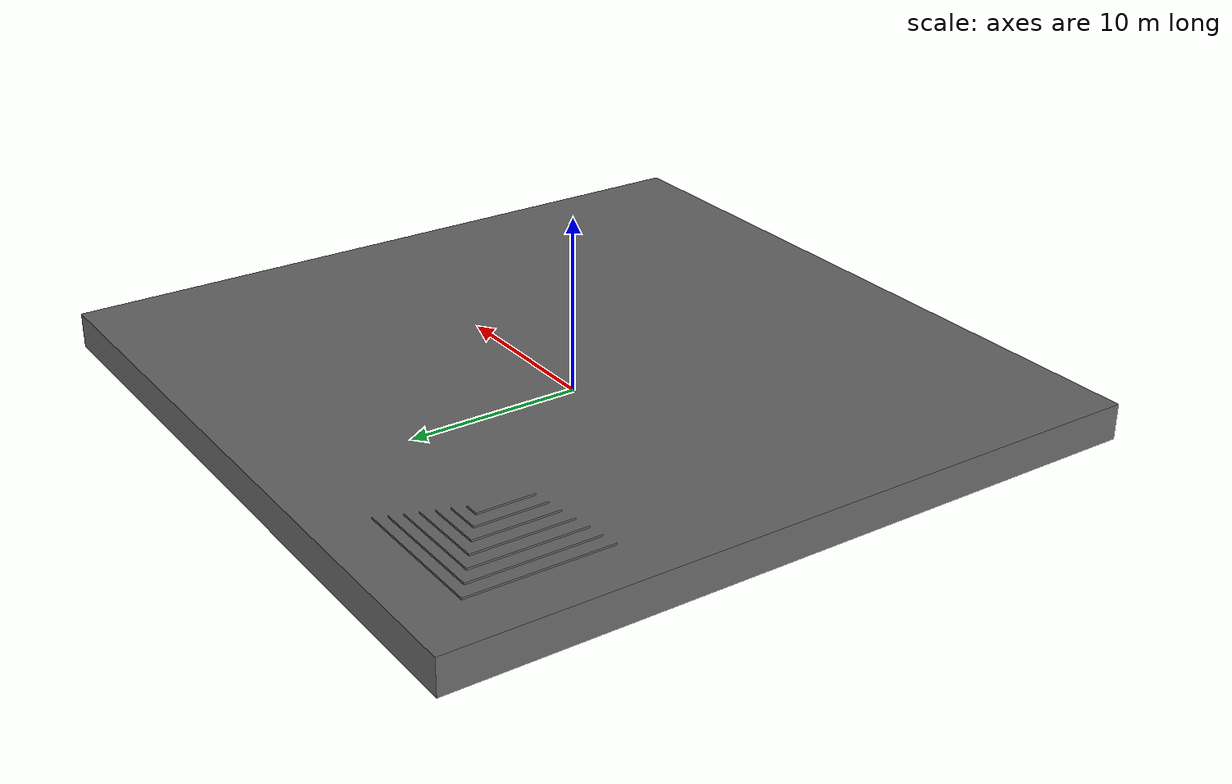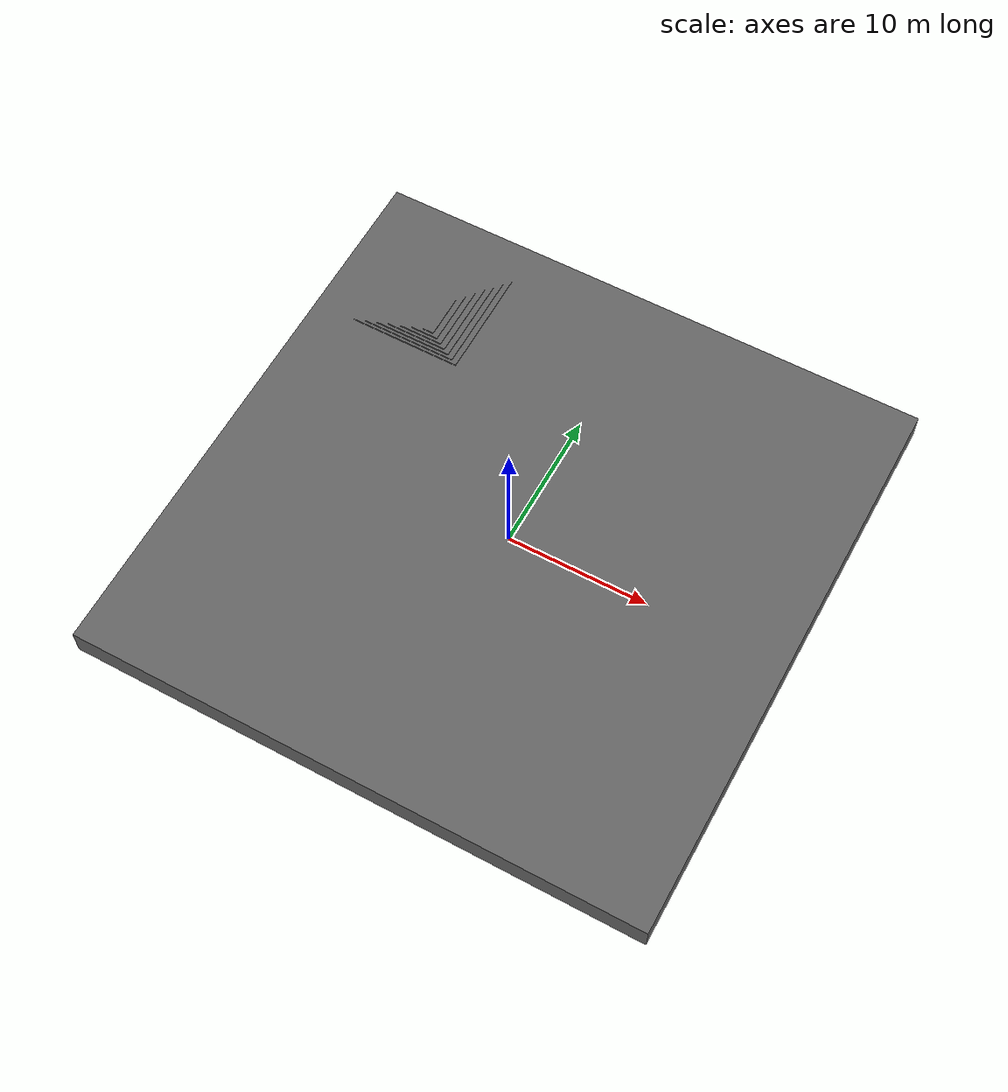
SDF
<?xml version="1.0" ?>

<sdf version="1.10">
  <world name='quadruped_world'>

    <physics name='1ms' type='ignored'>
      <max_step_size>0.001</max_step_size>
      <real_time_factor>1</real_time_factor>
      <real_time_update_rate>1000</real_time_update_rate>
    </physics>

    <plugin name='gz::sim::systems::Physics' filename='gz-sim-physics-system'/>
    <plugin name='gz::sim::systems::UserCommands' filename='gz-sim-user-commands-system'/>
    <plugin name='gz::sim::systems::SceneBroadcaster' filename='gz-sim-scene-broadcaster-system'/>
    <plugin name='gz::sim::systems::Contact' filename='gz-sim-contact-system'/>

    <gravity>0 0 -9.80665</gravity>
    <magnetic_field>5.5644999999999998e-06 2.2875799999999999e-05 -4.2388400000000002e-05</magnetic_field>
    <atmosphere type='adiabatic'/>

    <include>
      <uri>model://sun</uri>
    </include>

    <include>
      <name>obstacles_stage</name>
      <uri>model://obstacles_stage</uri>
      <static>true</static>
      <pose>0 0 0.05 0 0 0</pose>
    </include>

  </world>
</sdf>

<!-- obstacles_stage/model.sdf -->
<sdf version="1.6">
  <model name="obstacles_stage">
    <static>true</static>
    <link name="link">
      <collision name="collision">
        <geometry>
          <mesh>
            <scale>1 1 1</scale>
            <uri>model://obstacles_stage/meshes/spot_stage.stl</uri>
          </mesh>
        </geometry>
        <surface>
          <friction>
            <ode>
              <mu>1.2</mu>
              <mu2>1.2</mu2>
            </ode>
          </friction>
          <contact>
            <ode>
              <kp>100000</kp>
              <kd>1</kd>
              <max_vel>0.01</max_vel>
              <minDepth>0</minDepth>
              <contact_surface_layer>0</contact_surface_layer>
            </ode>
          </contact>
        </surface>
      </collision>
      <sensor name='sensor_contact' type='contact'>
        <contact>
          <collision>collision</collision>
        </contact>
      </sensor>
      <visual name="visual">
        <geometry>
          <mesh>
            <scale>1 1 1</scale>
            <uri>model://obstacles_stage/meshes/spot_stage.dae</uri>
          </mesh>
        </geometry>
      </visual>
    </link>
    <plugin filename="gz-sim-touchplugin-system"
            name="gz::sim::systems::TouchPlugin">
        <target>front_left_shin_link</target>
        <namespace>front_left_shin_link</namespace>
        <time>0.001</time>
        <enabled>true</enabled>
    </plugin>
  </model>
</sdf>
